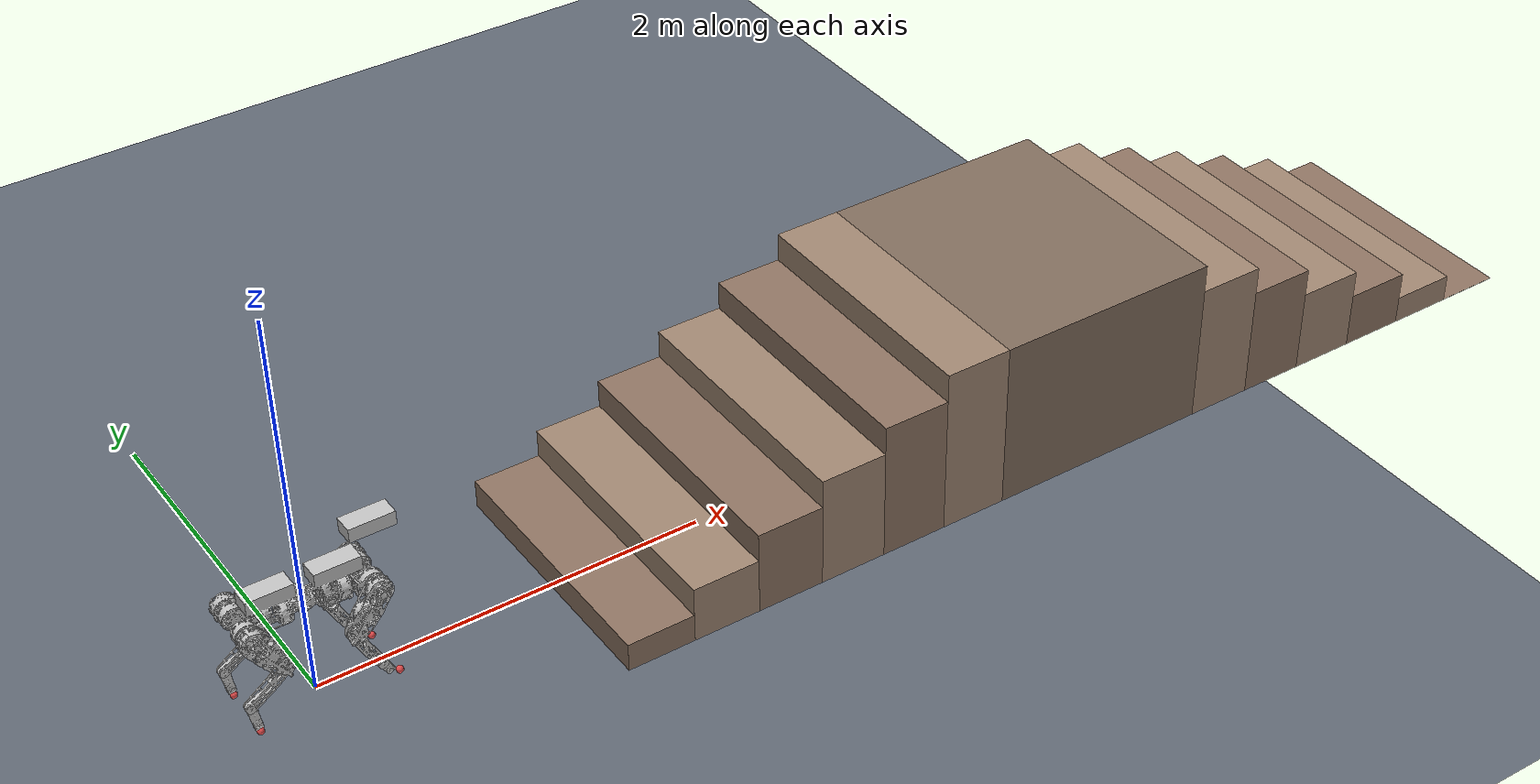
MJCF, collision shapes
<mujoco model="terrain_stairs">
  <include file="quad_real_17dof_waist_sphere.mjcf"/>
  <worldbody>
    <geom name="sup1" type="box" group="2" size="0.175 0.700 0.075" pos="1.375 0.000 0.075" rgba="0.55 0.45 0.38 1"/>
    <geom name="sup2" type="box" group="2" size="0.175 0.700 0.150" pos="1.725 0.000 0.150" rgba="0.62 0.52 0.44 1"/>
    <geom name="sup3" type="box" group="2" size="0.175 0.700 0.225" pos="2.075 0.000 0.225" rgba="0.55 0.45 0.38 1"/>
    <geom name="sup4" type="box" group="2" size="0.175 0.700 0.300" pos="2.425 0.000 0.300" rgba="0.62 0.52 0.44 1"/>
    <geom name="sup5" type="box" group="2" size="0.175 0.700 0.375" pos="2.775 0.000 0.375" rgba="0.55 0.45 0.38 1"/>
    <geom name="sup6" type="box" group="2" size="0.175 0.700 0.450" pos="3.125 0.000 0.450" rgba="0.62 0.52 0.44 1"/>
    <geom name="sland" type="box" group="2" size="0.600 0.700 0.450" pos="3.900 0.000 0.450" rgba="0.50 0.42 0.36 1"/>
    <geom name="sdn1" type="box" group="2" size="0.175 0.700 0.375" pos="4.675 0.000 0.375" rgba="0.62 0.52 0.44 1"/>
    <geom name="sdn2" type="box" group="2" size="0.175 0.700 0.300" pos="5.025 0.000 0.300" rgba="0.55 0.45 0.38 1"/>
    <geom name="sdn3" type="box" group="2" size="0.175 0.700 0.225" pos="5.375 0.000 0.225" rgba="0.62 0.52 0.44 1"/>
    <geom name="sdn4" type="box" group="2" size="0.175 0.700 0.150" pos="5.725 0.000 0.150" rgba="0.55 0.45 0.38 1"/>
    <geom name="sdn5" type="box" group="2" size="0.175 0.700 0.075" pos="6.075 0.000 0.075" rgba="0.62 0.52 0.44 1"/>
    <geom name="sdn6" type="box" group="2" size="0.175 0.700 0.001" pos="6.425 0.000 0.001" rgba="0.55 0.45 0.38 1"/>
  </worldbody>
</mujoco>

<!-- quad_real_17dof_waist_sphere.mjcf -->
<mujoco model="02_Leg_UFDF_260703_2">
  <compiler angle="radian" meshdir="/home/jsh/문서/jsh/simulation/quad/meshes_sim_17dof/" />
  <asset>
    <texture name="floor_tex" type="2d" builtin="checker" rgb1="0.33 0.36 0.40" rgb2="0.42 0.45 0.50" width="512" height="512" />
    <material name="floor_mat" texture="floor_tex" texuniform="true" texrepeat="12 12" reflectance="0.12" />
    <mesh name="Base" content_type="model/stl" file="Base.STL" />
    <mesh name="HL_hip_link" content_type="model/stl" file="HL_hip_link.STL" />
    <mesh name="HL_thigh_link" content_type="model/stl" file="HL_thigh_link.STL" />
    <mesh name="HL_calf_link" content_type="model/stl" file="HL_calf_link.STL" />
    <mesh name="HL_foot_link" content_type="model/stl" file="HL_foot_link.STL" />
    <mesh name="HL_foot_contact_link" content_type="model/stl" file="HL_foot_contact_link.STL" />
    <mesh name="HR_hip_link" content_type="model/stl" file="HR_hip_link.STL" />
    <mesh name="HR_thigh_link" content_type="model/stl" file="HR_thigh_link.STL" />
    <mesh name="HR_calf_link" content_type="model/stl" file="HR_calf_link.STL" />
    <mesh name="HR_foot_link" content_type="model/stl" file="HR_foot_link.STL" />
    <mesh name="HR_foot_contact_link" content_type="model/stl" file="HR_foot_contact_link.STL" />
    <mesh name="FB_waist_link" content_type="model/stl" file="FB_waist_link.STL" />
    <mesh name="FL_hip_link" content_type="model/stl" file="FL_hip_link.STL" />
    <mesh name="FL_thigh_link" content_type="model/stl" file="FL_thigh_link.STL" />
    <mesh name="FL_calf_link" content_type="model/stl" file="FL_calf_link.STL" />
    <mesh name="FL_foot_link" content_type="model/stl" file="FL_foot_link.STL" />
    <mesh name="FL_foot_contact_link" content_type="model/stl" file="FL_foot_contact_link.STL" />
    <mesh name="FR_hip_link" content_type="model/stl" file="FR_hip_link.STL" />
    <mesh name="FR_thigh_link" content_type="model/stl" file="FR_thigh_link.STL" />
    <mesh name="FR_calf_link" content_type="model/stl" file="FR_calf_link.STL" />
    <mesh name="FR_foot_link" content_type="model/stl" file="FR_foot_link.STL" />
    <mesh name="FR_foot_contact_link" content_type="model/stl" file="FR_foot_contact_link.STL" />
  </asset>
  <worldbody>
    <body name="Base" pos="0 0 0.5235">
      <freejoint name="root" />
      <inertial pos="-0.12954 -4.9268e-06 0.045617" quat="0.000189274 0.707107 -0.000482779 0.707107" mass="7.4" diaginertia="0.011565 0.010565 0.0059454" />
      <geom type="mesh" contype="0" conaffinity="0" group="1" density="0" rgba="0.75294 0.75294 0.75294 1" mesh="Base" />
      <geom type="mesh" rgba="0.75294 0.75294 0.75294 1" mesh="Base" />
      <body name="HL_hip_link" pos="-0.301 0.0225 0">
        <inertial pos="0.026196 0.039035 -5.8825e-05" quat="0.727698 -1.12194e-05 -8.00771e-06 0.685898" mass="1.3" diaginertia="0.000788485 0.000555085 0.00044966" />
        <joint name="HL_hip_joint" pos="0 0 0" axis="1 0 0" range="-0.6109 0.6109" actuatorfrcrange="-84 84" />
        <geom type="mesh" contype="0" conaffinity="0" group="1" density="0" rgba="0.75294 0.75294 0.75294 1" mesh="HL_hip_link" />
        <geom type="mesh" rgba="0.75294 0.75294 0.75294 1" mesh="HL_hip_link" />
        <body name="HL_thigh_link" pos="0 0.115 0">
          <inertial pos="0.055149 0.00079282 -0.077079" quat="0.674237 -0.213238 -0.213149 0.674167" mass="3.1" diaginertia="0.005605 0.00436141 0.00134769" />
          <joint name="HL_thigh_joint" pos="0 0 0" axis="0 1 0" range="-2.356 1.134" actuatorfrcrange="-84 84" />
          <geom type="mesh" contype="0" conaffinity="0" group="1" density="0" rgba="0.75294 0.75294 0.75294 1" mesh="HL_thigh_link" />
          <geom type="mesh" rgba="0.75294 0.75294 0.75294 1" mesh="HL_thigh_link" />
          <body name="HL_calf_link" pos="0.13192 0 -0.1884">
            <inertial pos="-0.071593 0.000126754 -0.0633446" quat="0.641055 0.29841 0.29841 0.641055" mass="0.595204" diaginertia="0.00243273 0.00232033 0.000138271" />
            <joint name="HL_calf_joint" pos="0 0 0" axis="0 1 0" range="-0.959 1.134" actuatorfrcrange="-126 126" />
            <geom type="mesh" contype="0" conaffinity="0" group="1" density="0" rgba="0.752941 0.752941 0.752941 1" mesh="HL_calf_link" />
            <geom type="mesh" rgba="0.752941 0.752941 0.752941 1" mesh="HL_calf_link" />
            <body name="HL_foot_link" pos="-0.18768 0 -0.15748">
              <inertial pos="0.0105929 -7.89238e-12 -0.0600756" quat="0.704415 -0.0616285 -0.0616283 0.704417" mass="0.202619" diaginertia="0.000300644 0.000274237 3.03295e-05" />
              <joint name="HL_foot_joint" pos="0 0 0" axis="0 1 0" range="-1.396 0.698" actuatorfrcrange="-168 168" />
              <geom type="mesh" contype="0" conaffinity="0" group="1" density="0" rgba="0.752941 0.752941 0.752941 1" mesh="HL_foot_link" />
              <geom type="mesh" rgba="0.752941 0.752941 0.752941 1" mesh="HL_foot_link" />
              <body name="HL_foot_contact_link" pos="0.0277837 0 -0.157569">
                <inertial pos="-0.000131235 1.07253e-10 0.000744242" quat="0.541675 0.45452 0.45452 0.541675" mass="0.0375462" diaginertia="1.07022e-05 8.08626e-06 7.24966e-06" />
                <geom type="mesh" contype="0" conaffinity="0" group="1" density="0" rgba="1 1 1 1" mesh="HL_foot_contact_link" />
                <geom type="mesh" rgba="1 1 1 1" mesh="HL_foot_contact_link" contype="0" conaffinity="0" />
                <geom name="HL_sphere" type="sphere" size="0.018" pos="0 0 0" rgba="0.9 0.3 0.3 1" friction="1.3 0.02 0.001" condim="3" />
              </body>
            </body>
          </body>
        </body>
      </body>
      <body name="HR_hip_link" pos="-0.301 -0.0225 0">
        <inertial pos="0.044964 -0.03664 4.8852e-05" quat="0.704132 9.93157e-06 1.28479e-05 0.710069" mass="1.4" diaginertia="0.000818289 0.000551961 0.00046473" />
        <joint name="HR_hip_joint" pos="0 0 0" axis="1 0 0" range="-0.6109 0.6109" actuatorfrcrange="-84 84" />
        <geom type="mesh" contype="0" conaffinity="0" group="1" density="0" rgba="0.75294 0.75294 0.75294 1" mesh="HR_hip_link" />
        <geom type="mesh" rgba="0.75294 0.75294 0.75294 1" mesh="HR_hip_link" />
        <body name="HR_thigh_link" pos="0 -0.115 0">
          <inertial pos="0.053568 -0.00079281 -0.078186" quat="0.674558 -0.212019 -0.212132 0.674552" mass="3.1" diaginertia="0.005605 0.00436143 0.00134767" />
          <joint name="HR_thigh_joint" pos="0 0 0" axis="0 1 0" range="-2.356 1.134" actuatorfrcrange="-84 84" />
          <geom type="mesh" contype="0" conaffinity="0" group="1" density="0" rgba="0.75294 0.75294 0.75294 1" mesh="HR_thigh_link" />
          <geom type="mesh" rgba="0.75294 0.75294 0.75294 1" mesh="HR_thigh_link" />
          <body name="HR_calf_link" pos="0.13192 0 -0.1884">
            <inertial pos="-0.071593 -0.000124046 -0.0633446" quat="0.641055 0.29841 0.29841 0.641055" mass="0.595204" diaginertia="0.00243273 0.00232033 0.000138271" />
            <joint name="HR_calf_joint" pos="0 0 0" axis="0 1 0" range="-0.959 1.134" actuatorfrcrange="-126 126" />
            <geom type="mesh" contype="0" conaffinity="0" group="1" density="0" rgba="0.752941 0.752941 0.752941 1" mesh="HR_calf_link" />
            <geom type="mesh" rgba="0.752941 0.752941 0.752941 1" mesh="HR_calf_link" />
            <body name="HR_foot_link" pos="-0.187681 0 -0.157483">
              <inertial pos="0.0105929 -7.89188e-12 -0.0600756" quat="0.704415 -0.0616285 -0.0616283 0.704417" mass="0.202619" diaginertia="0.000300644 0.000274237 3.03295e-05" />
              <joint name="HR_foot_joint" pos="0 0 0" axis="0 1 0" range="-1.396 0.698" actuatorfrcrange="-168 168" />
              <geom type="mesh" contype="0" conaffinity="0" group="1" density="0" rgba="0.752941 0.752941 0.752941 1" mesh="HR_foot_link" />
              <geom type="mesh" rgba="0.752941 0.752941 0.752941 1" mesh="HR_foot_link" />
              <body name="HR_foot_contact_link" pos="0.0277837 0 -0.157569">
                <inertial pos="-0.000131235 1.07254e-10 0.000744242" quat="0.541675 0.45452 0.45452 0.541675" mass="0.0375462" diaginertia="1.07022e-05 8.08626e-06 7.24966e-06" />
                <geom type="mesh" contype="0" conaffinity="0" group="1" density="0" rgba="1 1 1 1" mesh="HR_foot_contact_link" />
                <geom type="mesh" rgba="1 1 1 1" mesh="HR_foot_contact_link" contype="0" conaffinity="0" />
                <geom name="HR_sphere" type="sphere" size="0.018" pos="0 0 0" rgba="0.9 0.3 0.3 1" friction="1.3 0.02 0.001" condim="3" />
              </body>
            </body>
          </body>
        </body>
      </body>
      <body name="FB_waist_link">
        <inertial pos="0.21128 1.2507e-05 0.12655" quat="0.00014397 0.706912 -0.000145167 0.707302" mass="9.5" diaginertia="0.019743 0.018424 0.00768869" />
        <joint name="FB_waist_joint" pos="0 0 0" axis="0 0 1" range="-0.7854 0.7854" actuatorfrcrange="-84 84" />
        <geom type="mesh" contype="0" conaffinity="0" group="1" density="0" rgba="0.75294 0.75294 0.75294 1" mesh="FB_waist_link" />
        <geom type="mesh" rgba="0.75294 0.75294 0.75294 1" mesh="FB_waist_link" />
        <body name="FL_hip_link" pos="0.299 0.0225 0">
          <inertial pos="-0.044964 0.03664 4.8852e-05" quat="0.704132 -9.93157e-06 -1.28479e-05 0.710069" mass="1.3" diaginertia="0.000818289 0.000551961 0.00046473" />
          <joint name="FL_hip_joint" pos="0 0 0" axis="1 0 0" range="-0.6109 0.6109" actuatorfrcrange="-84 84" />
          <geom type="mesh" contype="0" conaffinity="0" group="1" density="0" rgba="0.75294 0.75294 0.75294 1" mesh="FL_hip_link" />
          <geom type="mesh" rgba="0.75294 0.75294 0.75294 1" mesh="FL_hip_link" />
          <body name="FL_thigh_link" pos="0 0.115 0">
            <inertial pos="-0.053568 0.00079281 -0.078186" quat="0.674558 0.212019 0.212132 0.674552" mass="3.1" diaginertia="0.005605 0.00436143 0.00134767" />
            <joint name="FL_thigh_joint" pos="0 0 0" axis="0 1 0" range="-2.443 1.047" actuatorfrcrange="-84 84" />
            <geom type="mesh" contype="0" conaffinity="0" group="1" density="0" rgba="0.75294 0.75294 0.75294 1" mesh="FL_thigh_link" />
            <geom type="mesh" rgba="0.75294 0.75294 0.75294 1" mesh="FL_thigh_link" />
            <body name="FL_calf_link" pos="-0.13192 -0.275 -0.1884">
              <inertial pos="0.0381147 0.275124 -0.0876662" quat="0.690447 -0.152587 -0.152587 0.690447" mass="0.595204" diaginertia="0.00243273 0.00232033 0.000138271" />
              <joint name="FL_calf_joint" pos="0 0 0" axis="0 1 0" range="-1.221 0.785" actuatorfrcrange="-126 126" />
              <geom type="mesh" contype="0" conaffinity="0" group="1" density="0" rgba="0.752941 0.752941 0.752941 1" mesh="FL_calf_link" />
              <geom type="mesh" rgba="0.752941 0.752941 0.752941 1" mesh="FL_calf_link" />
              <body name="FL_foot_link" pos="0.10354 0.275 -0.22205">
                <inertial pos="0.0165092 -1.18803e-11 -0.0285948" quat="0.683002 -0.183015 -0.18301 0.683023" mass="0.135769" diaginertia="8.92406e-05 7.12696e-05 2.11402e-05" />
                <joint name="FL_foot_joint" pos="0 0 0" axis="0 1 0" range="-0.785 1.571" actuatorfrcrange="-168 168" />
                <geom type="mesh" contype="0" conaffinity="0" group="1" density="0" rgba="0.752941 0.752941 0.752941 1" mesh="FL_foot_link" />
                <geom type="mesh" rgba="0.752941 0.752941 0.752941 1" mesh="FL_foot_link" />
                <body name="FL_foot_contact_link" pos="0.079064 0 -0.0871429">
                  <inertial pos="-0.00627719 -9.99837e-05 0.00215514" quat="0.531362 0.466535 0.466508 0.531385" mass="0.0917377" diaginertia="4.39469e-05 4.3319e-05 2.23667e-05" />
                  <geom type="mesh" contype="0" conaffinity="0" group="1" density="0" rgba="1 1 1 1" mesh="FL_foot_contact_link" />
                  <geom type="mesh" rgba="1 1 1 1" mesh="FL_foot_contact_link" contype="0" conaffinity="0" />
                  <geom name="FL_sphere" type="sphere" size="0.018" pos="0 0 0" rgba="0.9 0.3 0.3 1" friction="1.3 0.02 0.001" condim="3" />
                </body>
              </body>
            </body>
          </body>
        </body>
        <body name="FR_hip_link" pos="0.299 -0.0225 0">
          <inertial pos="-0.026196 -0.039035 -5.8825e-05" quat="0.727698 1.12194e-05 8.00771e-06 0.685898" mass="1.4" diaginertia="0.000788485 0.000555085 0.00044966" />
          <joint name="FR_hip_joint" pos="0 0 0" axis="1 0 0" range="-0.6109 0.6109" actuatorfrcrange="-84 84" />
          <geom type="mesh" contype="0" conaffinity="0" group="1" density="0" rgba="0.75294 0.75294 0.75294 1" mesh="FR_hip_link" />
          <geom type="mesh" rgba="0.75294 0.75294 0.75294 1" mesh="FR_hip_link" />
          <body name="FR_thigh_link" pos="0 -0.115 0">
            <inertial pos="-0.055149 -0.00079282 -0.077079" quat="0.674237 0.213238 0.213149 0.674167" mass="3.1" diaginertia="0.005605 0.00436141 0.00134769" />
            <joint name="FR_thigh_joint" pos="0 0 0" axis="0 1 0" range="-2.443 1.047" actuatorfrcrange="-84 84" />
            <geom type="mesh" contype="0" conaffinity="0" group="1" density="0" rgba="0.75294 0.75294 0.75294 1" mesh="FR_thigh_link" />
            <geom type="mesh" rgba="0.75294 0.75294 0.75294 1" mesh="FR_thigh_link" />
            <body name="FR_calf_link" pos="-0.13192 0 -0.1884">
              <inertial pos="0.0381147 -0.000126754 -0.0876662" quat="0.690447 -0.152587 -0.152587 0.690447" mass="0.595204" diaginertia="0.00243273 0.00232033 0.000138271" />
              <joint name="FR_calf_joint" pos="0 0 0" axis="0 1 0" range="-1.221 0.785" actuatorfrcrange="-126 126" />
              <geom type="mesh" contype="0" conaffinity="0" group="1" density="0" rgba="0.752941 0.752941 0.752941 1" mesh="FR_calf_link" />
              <geom type="mesh" rgba="0.752941 0.752941 0.752941 1" mesh="FR_calf_link" />
              <body name="FR_foot_link" pos="0.10354 0 -0.22205">
                <inertial pos="0.0165092 -1.18804e-11 -0.0285948" quat="0.683002 -0.183015 -0.18301 0.683023" mass="0.135769" diaginertia="8.92406e-05 7.12696e-05 2.11402e-05" />
                <joint name="FR_foot_joint" pos="0 0 0" axis="0 1 0" range="-0.785 1.571" actuatorfrcrange="-168 168" />
                <geom type="mesh" contype="0" conaffinity="0" group="1" density="0" rgba="0.752941 0.752941 0.752941 1" mesh="FR_foot_link" />
                <geom type="mesh" rgba="0.752941 0.752941 0.752941 1" mesh="FR_foot_link" />
                <body name="FR_foot_contact_link" pos="0.079064 0 -0.0871429">
                  <inertial pos="-0.00627719 -9.99837e-05 0.00215514" quat="0.531362 0.466535 0.466508 0.531385" mass="0.0917377" diaginertia="4.39469e-05 4.3319e-05 2.23667e-05" />
                  <geom type="mesh" contype="0" conaffinity="0" group="1" density="0" rgba="1 1 1 1" mesh="FR_foot_contact_link" />
                  <geom type="mesh" rgba="1 1 1 1" mesh="FR_foot_contact_link" contype="0" conaffinity="0" />
                  <geom name="FR_sphere" type="sphere" size="0.018" pos="0 0 0" rgba="0.9 0.3 0.3 1" friction="1.3 0.02 0.001" condim="3" />
                </body>
              </body>
            </body>
          </body>
        </body>
      </body>
    </body>
    <geom name="floor" type="plane" size="5 5 0.1" material="floor_mat" />
    <light pos="0 0 3" dir="0 0 -1" />
  </worldbody>
  <option timestep="0.002" gravity="0 0 -9.81" />
  <default>
    <geom friction="1.3 0.02 0.001" condim="3" />
    <motor ctrllimited="true" ctrlrange="-200 200" />
  </default>
  <actuator>
    <motor joint="HL_hip_joint" name="HL_hip" />
    <motor joint="HL_thigh_joint" name="HL_thigh" />
    <motor joint="HL_calf_joint" name="HL_calf" />
    <motor joint="HL_foot_joint" name="HL_foot" />
    <motor joint="HR_hip_joint" name="HR_hip" />
    <motor joint="HR_thigh_joint" name="HR_thigh" />
    <motor joint="HR_calf_joint" name="HR_calf" />
    <motor joint="HR_foot_joint" name="HR_foot" />
    <motor joint="FB_waist_joint" name="FB_waist" />
    <motor joint="FL_hip_joint" name="FL_hip" />
    <motor joint="FL_thigh_joint" name="FL_thigh" />
    <motor joint="FL_calf_joint" name="FL_calf" />
    <motor joint="FL_foot_joint" name="FL_foot" />
    <motor joint="FR_hip_joint" name="FR_hip" />
    <motor joint="FR_thigh_joint" name="FR_thigh" />
    <motor joint="FR_calf_joint" name="FR_calf" />
    <motor joint="FR_foot_joint" name="FR_foot" />
  </actuator>
</mujoco>
